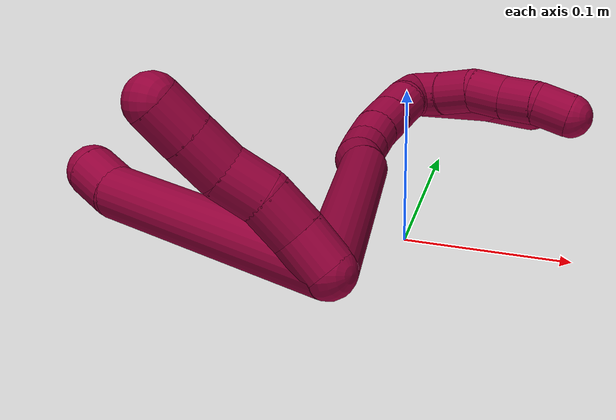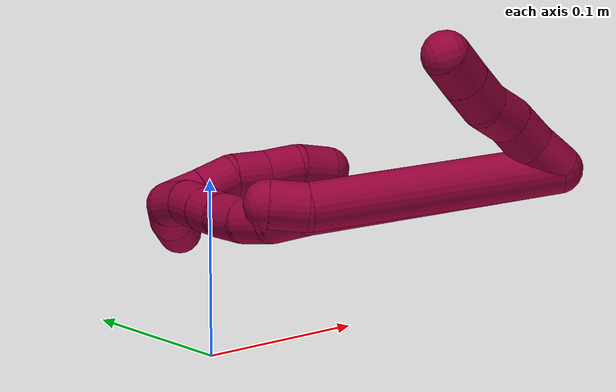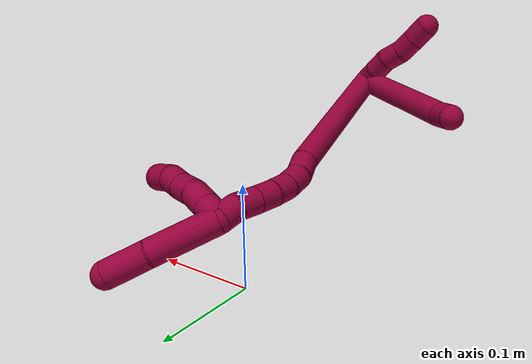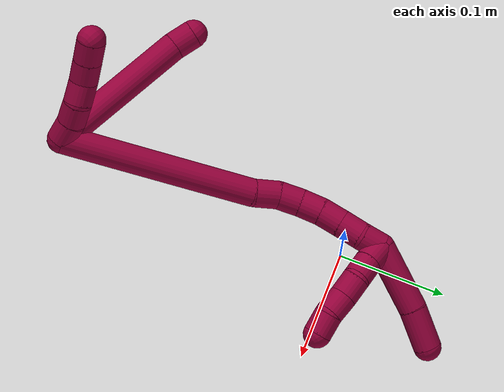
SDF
<sdf version="1.7">
 <world name="default">
  <model name="photoneo_s_sensor">
   <static>1</static>
   <pose>0 0 2 1.57079 1.57079 3.14159</pose>
   <link name="link">
    <inertial><mass>0.1</mass></inertial>
    <sensor name="sensor" type="depth">
     <update_rate>30</update_rate>
     <camera>
      <horizontal_fov>1.22</horizontal_fov>
      <image><width>1920</width><height>1200</height><format>B8G8R8</format></image>
      <clip><near>0.1</near><far>4</far></clip>
      <depth_camera><output>points</output></depth_camera>
     </camera>
     <plugin name="camera_plugin" filename="libgazebo_ros_depth_camera.so">
      <baseline>0.2</baseline>
      <alwaysOn>1</alwaysOn>
      <updateRate>0.0</updateRate>
      <cameraName>camera_ir</cameraName>
      <imageTopicName>/camera/color/image_raw</imageTopicName>
      <cameraInfoTopicName>/camera/color/camera_info</cameraInfoTopicName>
      <depthImageTopicName>/camera/depth/image_raw</depthImageTopicName>
      <depthImageCameraInfoTopicName>/camera/depth/camera_info</depthImageCameraInfoTopicName>
      <pointCloudTopicName>/camera/depth/points</pointCloudTopicName>
      <frameName>fr_optical</frameName>
      <pointCloudCutoff>0.1</pointCloudCutoff>
      <pointCloudCutoffMax>2.0</pointCloudCutoffMax>
      <distortionK1>0</distortionK1>
      <distortionK2>0</distortionK2>
      <distortionK3>0</distortionK3>
      <distortionT1>0</distortionT1>
      <distortionT2>0</distortionT2>
      <CxPrime>0</CxPrime>
      <Cx>0</Cx>
      <Cy>0</Cy>
      <focalLength>0</focalLength>
      <hackBaseline>0</hackBaseline>
     </plugin>
    </sensor>
   </link>
  </model>
  <model name="bin">
   <static>1</static>
   <link name="bottom">
    <collision name="collision-bottom">
     <pose>0 0 -0.01 0 -0 0</pose>
     <geometry><box><size>0.8 0.6 0.02</size></box></geometry>
     <surface>
      <friction><ode><mu>100</mu><mu2>100</mu2></ode></friction>
      <contact><collide_bitmask>65535</collide_bitmask></contact>
     </surface>
    </collision>
   </link>
   <link name="west_wall">
    <collision name="collision-west_wall">
     <pose>-0.41 0 0.1 0 -0 0</pose>
     <geometry><box><size>0.02 0.6 0.2</size></box></geometry>
     <surface>
      <friction><ode><mu>100</mu><mu2>100</mu2></ode></friction>
      <contact><collide_bitmask>65535</collide_bitmask></contact>
     </surface>
    </collision>
   </link>
   <link name="east_wall">
    <collision name="collision-east_wall">
     <pose>0.41 0 0.1 0 -0 0</pose>
     <geometry><box><size>0.02 0.6 0.2</size></box></geometry>
     <surface>
      <friction><ode><mu>100</mu><mu2>100</mu2></ode></friction>
      <contact><collide_bitmask>65535</collide_bitmask></contact>
     </surface>
    </collision>
   </link>
   <link name="south_wall">
    <collision name="collision-south_wall">
     <pose>0 -0.31 0.1 0 -0 0</pose>
     <geometry><box><size>0.8 0.02 0.2</size></box></geometry>
     <surface>
      <friction><ode><mu>100</mu><mu2>100</mu2></ode></friction>
      <contact><collide_bitmask>65535</collide_bitmask></contact>
     </surface>
    </collision>
   </link>
   <link name="north_wall">
    <collision name="collision-north_wall">
     <pose>0 0.31 0.1 0 -0 0</pose>
     <geometry><box><size>0.8 0.02 0.2</size></box></geometry>
     <surface>
      <friction><ode><mu>100</mu><mu2>100</mu2></ode></friction>
      <contact><collide_bitmask>65535</collide_bitmask></contact>
     </surface>
    </collision>
   </link>
  </model>
  <model name="8">
   <static>0</static>
   <link name="8">
    <collision name="collision-cylinder-e_1_2_8">
     <pose>-0.008957 -0.003268 -0.064124 3.09068 -0.138609 -2.43847</pose>
     <geometry><cylinder><radius>0.0125</radius><length>0.129657</length></cylinder></geometry>
     <surface>
      <friction><ode><mu>1.16</mu><mu2>1.16</mu2><slip1>0</slip1><slip2>0</slip2></ode></friction>
      <contact><ode><kp>1e+06</kp><kd>1</kd><max_vel>0</max_vel><min_depth>0.001</min_depth></ode></contact>
     </surface>
    </collision>
    <visual name="visual-cylinder-e_1_2_8">
     <pose>-0.008957 -0.003268 -0.064124 3.09068 -0.138609 -2.43847</pose>
     <geometry><cylinder><radius>0.0125</radius><length>0.129657</length></cylinder></geometry>
     <material><ambient>0.584314 0 0.227451 1</ambient></material>
    </visual>
    <collision name="collision-cylinder-e_2_8_6">
     <pose>-0.021904 -0.006807 -0.137599 3.11252 -0.403124 -2.99956</pose>
     <geometry><cylinder><radius>0.0125</radius><length>0.020343</length></cylinder></geometry>
     <surface>
      <friction><ode><mu>1.16</mu><mu2>1.16</mu2><slip1>0</slip1><slip2>0</slip2></ode></friction>
      <contact><ode><kp>1e+06</kp><kd>1</kd><max_vel>0</max_vel><min_depth>0.001</min_depth></ode></contact>
     </surface>
    </collision>
    <visual name="visual-cylinder-e_2_8_6">
     <pose>-0.021904 -0.006807 -0.137599 3.11252 -0.403124 -2.99956</pose>
     <geometry><cylinder><radius>0.0125</radius><length>0.020343</length></cylinder></geometry>
     <material><ambient>0.584314 0 0.227451 1</ambient></material>
    </visual>
    <collision name="collision-cylinder-e_1_2_9">
     <pose>-0.00592 -0.005723 -0.005675 2.352 -0.633553 -1.33321</pose>
     <geometry><cylinder><radius>0.0125</radius><length>0.02</length></cylinder></geometry>
     <surface>
      <friction><ode><mu>1.16</mu><mu2>1.16</mu2><slip1>0</slip1><slip2>0</slip2></ode></friction>
      <contact><ode><kp>1e+06</kp><kd>1</kd><max_vel>0</max_vel><min_depth>0.001</min_depth></ode></contact>
     </surface>
    </collision>
    <visual name="visual-cylinder-e_1_2_9">
     <pose>-0.00592 -0.005723 -0.005675 2.352 -0.633553 -1.33321</pose>
     <geometry><cylinder><radius>0.0125</radius><length>0.02</length></cylinder></geometry>
     <material><ambient>0.584314 0 0.227451 1</ambient></material>
    </visual>
    <collision name="collision-cylinder-e_2_9_10">
     <pose>-0.016985 -0.018524 -0.01619 2.17059 -0.540352 -0.966734</pose>
     <geometry><cylinder><radius>0.0125</radius><length>0.02</length></cylinder></geometry>
     <surface>
      <friction><ode><mu>1.16</mu><mu2>1.16</mu2><slip1>0</slip1><slip2>0</slip2></ode></friction>
      <contact><ode><kp>1e+06</kp><kd>1</kd><max_vel>0</max_vel><min_depth>0.001</min_depth></ode></contact>
     </surface>
    </collision>
    <visual name="visual-cylinder-e_2_9_10">
     <pose>-0.016985 -0.018524 -0.01619 2.17059 -0.540352 -0.966734</pose>
     <geometry><cylinder><radius>0.0125</radius><length>0.02</length></cylinder></geometry>
     <material><ambient>0.584314 0 0.227451 1</ambient></material>
    </visual>
    <collision name="collision-cylinder-e_3_10_11">
     <pose>-0.025063 -0.032797 -0.027326 2.28962 -0.297821 -0.638595</pose>
     <geometry><cylinder><radius>0.0125</radius><length>0.02</length></cylinder></geometry>
     <surface>
      <friction><ode><mu>1.16</mu><mu2>1.16</mu2><slip1>0</slip1><slip2>0</slip2></ode></friction>
      <contact><ode><kp>1e+06</kp><kd>1</kd><max_vel>0</max_vel><min_depth>0.001</min_depth></ode></contact>
     </surface>
    </collision>
    <visual name="visual-cylinder-e_3_10_11">
     <pose>-0.025063 -0.032797 -0.027326 2.28962 -0.297821 -0.638595</pose>
     <geometry><cylinder><radius>0.0125</radius><length>0.02</length></cylinder></geometry>
     <material><ambient>0.584314 0 0.227451 1</ambient></material>
    </visual>
    <collision name="collision-cylinder-e_4_11_12">
     <pose>-0.032468 -0.047771 -0.038037 2.08704 -0.463398 -0.769971</pose>
     <geometry><cylinder><radius>0.0125</radius><length>0.02</length></cylinder></geometry>
     <surface>
      <friction><ode><mu>1.16</mu><mu2>1.16</mu2><slip1>0</slip1><slip2>0</slip2></ode></friction>
      <contact><ode><kp>1e+06</kp><kd>1</kd><max_vel>0</max_vel><min_depth>0.001</min_depth></ode></contact>
     </surface>
    </collision>
    <visual name="visual-cylinder-e_4_11_12">
     <pose>-0.032468 -0.047771 -0.038037 2.08704 -0.463398 -0.769971</pose>
     <geometry><cylinder><radius>0.0125</radius><length>0.02</length></cylinder></geometry>
     <material><ambient>0.584314 0 0.227451 1</ambient></material>
    </visual>
    <collision name="collision-cylinder-e_5_12_5">
     <pose>-0.041534 -0.063363 -0.046675 2.06634 -0.477555 -0.775255</pose>
     <geometry><cylinder><radius>0.0125</radius><length>0.02</length></cylinder></geometry>
     <surface>
      <friction><ode><mu>1.16</mu><mu2>1.16</mu2><slip1>0</slip1><slip2>0</slip2></ode></friction>
      <contact><ode><kp>1e+06</kp><kd>1</kd><max_vel>0</max_vel><min_depth>0.001</min_depth></ode></contact>
     </surface>
    </collision>
    <visual name="visual-cylinder-e_5_12_5">
     <pose>-0.041534 -0.063363 -0.046675 2.06634 -0.477555 -0.775255</pose>
     <geometry><cylinder><radius>0.0125</radius><length>0.02</length></cylinder></geometry>
     <material><ambient>0.584314 0 0.227451 1</ambient></material>
    </visual>
    <collision name="collision-cylinder-e_1_2_13">
     <pose>-0.035171 0.063 -0.049357 -2.23536 -0.414058 0.814518</pose>
     <geometry><cylinder><radius>0.0125</radius><length>0.174837</length></cylinder></geometry>
     <surface>
      <friction><ode><mu>1.16</mu><mu2>1.16</mu2><slip1>0</slip1><slip2>0</slip2></ode></friction>
      <contact><ode><kp>1e+06</kp><kd>1</kd><max_vel>0</max_vel><min_depth>0.001</min_depth></ode></contact>
     </surface>
    </collision>
    <visual name="visual-cylinder-e_1_2_13">
     <pose>-0.035171 0.063 -0.049357 -2.23536 -0.414058 0.814518</pose>
     <geometry><cylinder><radius>0.0125</radius><length>0.174837</length></cylinder></geometry>
     <material><ambient>0.584314 0 0.227451 1</ambient></material>
    </visual>
    <collision name="collision-cylinder-e_2_13_14">
     <pose>-0.074071 0.133106 -0.106936 -2.42889 -0.330493 0.842386</pose>
     <geometry><cylinder><radius>0.0125</radius><length>0.02298</length></cylinder></geometry>
     <surface>
      <friction><ode><mu>1.16</mu><mu2>1.16</mu2><slip1>0</slip1><slip2>0</slip2></ode></friction>
      <contact><ode><kp>1e+06</kp><kd>1</kd><max_vel>0</max_vel><min_depth>0.001</min_depth></ode></contact>
     </surface>
    </collision>
    <visual name="visual-cylinder-e_2_13_14">
     <pose>-0.074071 0.133106 -0.106936 -2.42889 -0.330493 0.842386</pose>
     <geometry><cylinder><radius>0.0125</radius><length>0.02298</length></cylinder></geometry>
     <material><ambient>0.584314 0 0.227451 1</ambient></material>
    </visual>
    <collision name="collision-cylinder-e_3_14_15">
     <pose>-0.083162 0.14767 -0.120174 -2.16274 -0.538017 0.955226</pose>
     <geometry><cylinder><radius>0.0125</radius><length>0.020932</length></cylinder></geometry>
     <surface>
      <friction><ode><mu>1.16</mu><mu2>1.16</mu2><slip1>0</slip1><slip2>0</slip2></ode></friction>
      <contact><ode><kp>1e+06</kp><kd>1</kd><max_vel>0</max_vel><min_depth>0.001</min_depth></ode></contact>
     </surface>
    </collision>
    <visual name="visual-cylinder-e_3_14_15">
     <pose>-0.083162 0.14767 -0.120174 -2.16274 -0.538017 0.955226</pose>
     <geometry><cylinder><radius>0.0125</radius><length>0.020932</length></cylinder></geometry>
     <material><ambient>0.584314 0 0.227451 1</ambient></material>
    </visual>
    <collision name="collision-cylinder-e_4_15_16">
     <pose>-0.094935 0.162058 -0.128769 -2.04769 -0.687857 1.06339</pose>
     <geometry><cylinder><radius>0.0125</radius><length>0.020191</length></cylinder></geometry>
     <surface>
      <friction><ode><mu>1.16</mu><mu2>1.16</mu2><slip1>0</slip1><slip2>0</slip2></ode></friction>
      <contact><ode><kp>1e+06</kp><kd>1</kd><max_vel>0</max_vel><min_depth>0.001</min_depth></ode></contact>
     </surface>
    </collision>
    <visual name="visual-cylinder-e_4_15_16">
     <pose>-0.094935 0.162058 -0.128769 -2.04769 -0.687857 1.06339</pose>
     <geometry><cylinder><radius>0.0125</radius><length>0.020191</length></cylinder></geometry>
     <material><ambient>0.584314 0 0.227451 1</ambient></material>
    </visual>
    <collision name="collision-cylinder-e_5_16_17">
     <pose>-0.107737 0.176395 -0.134691 -1.87696 -0.688562 0.910248</pose>
     <geometry><cylinder><radius>0.0125</radius><length>0.020121</length></cylinder></geometry>
     <surface>
      <friction><ode><mu>1.16</mu><mu2>1.16</mu2><slip1>0</slip1><slip2>0</slip2></ode></friction>
      <contact><ode><kp>1e+06</kp><kd>1</kd><max_vel>0</max_vel><min_depth>0.001</min_depth></ode></contact>
     </surface>
    </collision>
    <visual name="visual-cylinder-e_5_16_17">
     <pose>-0.107737 0.176395 -0.134691 -1.87696 -0.688562 0.910248</pose>
     <geometry><cylinder><radius>0.0125</radius><length>0.020121</length></cylinder></geometry>
     <material><ambient>0.584314 0 0.227451 1</ambient></material>
    </visual>
    <collision name="collision-cylinder-e_6_17_18">
     <pose>-0.12089 0.191392 -0.13916 -1.84416 -0.708929 0.908224</pose>
     <geometry><cylinder><radius>0.0125</radius><length>0.02077</length></cylinder></geometry>
     <surface>
      <friction><ode><mu>1.16</mu><mu2>1.16</mu2><slip1>0</slip1><slip2>0</slip2></ode></friction>
      <contact><ode><kp>1e+06</kp><kd>1</kd><max_vel>0</max_vel><min_depth>0.001</min_depth></ode></contact>
     </surface>
    </collision>
    <visual name="visual-cylinder-e_6_17_18">
     <pose>-0.12089 0.191392 -0.13916 -1.84416 -0.708929 0.908224</pose>
     <geometry><cylinder><radius>0.0125</radius><length>0.02077</length></cylinder></geometry>
     <material><ambient>0.584314 0 0.227451 1</ambient></material>
    </visual>
    <collision name="collision-cylinder-e_7_18_1">
     <pose>-0.132283 0.207283 -0.144657 -1.95633 -0.477164 0.69321</pose>
     <geometry><cylinder><radius>0.0125</radius><length>0.020169</length></cylinder></geometry>
     <surface>
      <friction><ode><mu>1.16</mu><mu2>1.16</mu2><slip1>0</slip1><slip2>0</slip2></ode></friction>
      <contact><ode><kp>1e+06</kp><kd>1</kd><max_vel>0</max_vel><min_depth>0.001</min_depth></ode></contact>
     </surface>
    </collision>
    <visual name="visual-cylinder-e_7_18_1">
     <pose>-0.132283 0.207283 -0.144657 -1.95633 -0.477164 0.69321</pose>
     <geometry><cylinder><radius>0.0125</radius><length>0.020169</length></cylinder></geometry>
     <material><ambient>0.584314 0 0.227451 1</ambient></material>
    </visual>
    <collision name="collision-cylinder-e_1_1_19">
     <pose>-0.138063 0.215878 -0.138096 -0.029674 -0.115122 0.00171</pose>
     <geometry><cylinder><radius>0.0125</radius><length>0.02</length></cylinder></geometry>
     <surface>
      <friction><ode><mu>1.16</mu><mu2>1.16</mu2><slip1>0</slip1><slip2>0</slip2></ode></friction>
      <contact><ode><kp>1e+06</kp><kd>1</kd><max_vel>0</max_vel><min_depth>0.001</min_depth></ode></contact>
     </surface>
    </collision>
    <visual name="visual-cylinder-e_1_1_19">
     <pose>-0.138063 0.215878 -0.138096 -0.029674 -0.115122 0.00171</pose>
     <geometry><cylinder><radius>0.0125</radius><length>0.02</length></cylinder></geometry>
     <material><ambient>0.584314 0 0.227451 1</ambient></material>
    </visual>
    <collision name="collision-cylinder-e_2_19_20">
     <pose>-0.140996 0.216916 -0.118355 -0.07564 -0.179454 0.006808</pose>
     <geometry><cylinder><radius>0.0125</radius><length>0.02</length></cylinder></geometry>
     <surface>
      <friction><ode><mu>1.16</mu><mu2>1.16</mu2><slip1>0</slip1><slip2>0</slip2></ode></friction>
      <contact><ode><kp>1e+06</kp><kd>1</kd><max_vel>0</max_vel><min_depth>0.001</min_depth></ode></contact>
     </surface>
    </collision>
    <visual name="visual-cylinder-e_2_19_20">
     <pose>-0.140996 0.216916 -0.118355 -0.07564 -0.179454 0.006808</pose>
     <geometry><cylinder><radius>0.0125</radius><length>0.02</length></cylinder></geometry>
     <material><ambient>0.584314 0 0.227451 1</ambient></material>
    </visual>
    <collision name="collision-cylinder-e_3_20_21">
     <pose>-0.141988 0.220239 -0.098915 -0.261735 0.079391 -0.010455</pose>
     <geometry><cylinder><radius>0.0125</radius><length>0.02</length></cylinder></geometry>
     <surface>
      <friction><ode><mu>1.16</mu><mu2>1.16</mu2><slip1>0</slip1><slip2>0</slip2></ode></friction>
      <contact><ode><kp>1e+06</kp><kd>1</kd><max_vel>0</max_vel><min_depth>0.001</min_depth></ode></contact>
     </surface>
    </collision>
    <visual name="visual-cylinder-e_3_20_21">
     <pose>-0.141988 0.220239 -0.098915 -0.261735 0.079391 -0.010455</pose>
     <geometry><cylinder><radius>0.0125</radius><length>0.02</length></cylinder></geometry>
     <material><ambient>0.584314 0 0.227451 1</ambient></material>
    </visual>
    <collision name="collision-cylinder-e_4_21_22">
     <pose>-0.140794 0.224387 -0.079418 -0.157618 0.04016 -0.003172</pose>
     <geometry><cylinder><radius>0.0125</radius><length>0.02</length></cylinder></geometry>
     <surface>
      <friction><ode><mu>1.16</mu><mu2>1.16</mu2><slip1>0</slip1><slip2>0</slip2></ode></friction>
      <contact><ode><kp>1e+06</kp><kd>1</kd><max_vel>0</max_vel><min_depth>0.001</min_depth></ode></contact>
     </surface>
    </collision>
    <visual name="visual-cylinder-e_4_21_22">
     <pose>-0.140794 0.224387 -0.079418 -0.157618 0.04016 -0.003172</pose>
     <geometry><cylinder><radius>0.0125</radius><length>0.02</length></cylinder></geometry>
     <material><ambient>0.584314 0 0.227451 1</ambient></material>
    </visual>
    <collision name="collision-cylinder-e_5_22_4">
     <pose>-0.138722 0.23038 -0.060739 -0.465395 0.167841 -0.039865</pose>
     <geometry><cylinder><radius>0.0125</radius><length>0.02</length></cylinder></geometry>
     <surface>
      <friction><ode><mu>1.16</mu><mu2>1.16</mu2><slip1>0</slip1><slip2>0</slip2></ode></friction>
      <contact><ode><kp>1e+06</kp><kd>1</kd><max_vel>0</max_vel><min_depth>0.001</min_depth></ode></contact>
     </surface>
    </collision>
    <visual name="visual-cylinder-e_5_22_4">
     <pose>-0.138722 0.23038 -0.060739 -0.465395 0.167841 -0.039865</pose>
     <geometry><cylinder><radius>0.0125</radius><length>0.02</length></cylinder></geometry>
     <material><ambient>0.584314 0 0.227451 1</ambient></material>
    </visual>
    <collision name="collision-cylinder-e_1_1_23">
     <pose>-0.14487 0.245098 -0.142925 -1.39969 -0.259628 0.218969</pose>
     <geometry><cylinder><radius>0.0125</radius><length>0.061982</length></cylinder></geometry>
     <surface>
      <friction><ode><mu>1.16</mu><mu2>1.16</mu2><slip1>0</slip1><slip2>0</slip2></ode></friction>
      <contact><ode><kp>1e+06</kp><kd>1</kd><max_vel>0</max_vel><min_depth>0.001</min_depth></ode></contact>
     </surface>
    </collision>
    <visual name="visual-cylinder-e_1_1_23">
     <pose>-0.14487 0.245098 -0.142925 -1.39969 -0.259628 0.218969</pose>
     <geometry><cylinder><radius>0.0125</radius><length>0.061982</length></cylinder></geometry>
     <material><ambient>0.584314 0 0.227451 1</ambient></material>
    </visual>
    <collision name="collision-cylinder-e_2_23_3">
     <pose>-0.156 0.292787 -0.133244 -1.32386 -0.167728 0.130815</pose>
     <geometry><cylinder><radius>0.0125</radius><length>0.038018</length></cylinder></geometry>
     <surface>
      <friction><ode><mu>1.16</mu><mu2>1.16</mu2><slip1>0</slip1><slip2>0</slip2></ode></friction>
      <contact><ode><kp>1e+06</kp><kd>1</kd><max_vel>0</max_vel><min_depth>0.001</min_depth></ode></contact>
     </surface>
    </collision>
    <visual name="visual-cylinder-e_2_23_3">
     <pose>-0.156 0.292787 -0.133244 -1.32386 -0.167728 0.130815</pose>
     <geometry><cylinder><radius>0.0125</radius><length>0.038018</length></cylinder></geometry>
     <material><ambient>0.584314 0 0.227451 1</ambient></material>
    </visual>
    <collision name="collision-sphere-3">
     <pose>-0.159173 0.310961 -0.128663 0 -0 0</pose>
     <geometry><sphere><radius>0.0125</radius></sphere></geometry>
     <surface>
      <friction><ode><mu>1.16</mu><mu2>1.16</mu2><slip1>0</slip1><slip2>0</slip2></ode></friction>
      <contact><ode><kp>1e+06</kp><kd>1</kd><max_vel>0</max_vel><min_depth>0.001</min_depth></ode></contact>
     </surface>
    </collision>
    <visual name="visual-sphere-3">
     <pose>-0.159173 0.310961 -0.128663 0 -0 0</pose>
     <geometry><sphere><radius>0.0125</radius></sphere></geometry>
     <material><ambient>0.584314 0 0.227451 1</ambient></material>
    </visual>
    <collision name="collision-sphere-23">
     <pose>-0.152826 0.274613 -0.137825 0 -0 0</pose>
     <geometry><sphere><radius>0.0125</radius></sphere></geometry>
     <surface>
      <friction><ode><mu>1.16</mu><mu2>1.16</mu2><slip1>0</slip1><slip2>0</slip2></ode></friction>
      <contact><ode><kp>1e+06</kp><kd>1</kd><max_vel>0</max_vel><min_depth>0.001</min_depth></ode></contact>
     </surface>
    </collision>
    <visual name="visual-sphere-23">
     <pose>-0.152826 0.274613 -0.137825 0 -0 0</pose>
     <geometry><sphere><radius>0.0125</radius></sphere></geometry>
     <material><ambient>0.584314 0 0.227451 1</ambient></material>
    </visual>
    <collision name="collision-sphere-4">
     <pose>-0.137051 0.234805 -0.051928 0 -0 0</pose>
     <geometry><sphere><radius>0.0125</radius></sphere></geometry>
     <surface>
      <friction><ode><mu>1.16</mu><mu2>1.16</mu2><slip1>0</slip1><slip2>0</slip2></ode></friction>
      <contact><ode><kp>1e+06</kp><kd>1</kd><max_vel>0</max_vel><min_depth>0.001</min_depth></ode></contact>
     </surface>
    </collision>
    <visual name="visual-sphere-4">
     <pose>-0.137051 0.234805 -0.051928 0 -0 0</pose>
     <geometry><sphere><radius>0.0125</radius></sphere></geometry>
     <material><ambient>0.584314 0 0.227451 1</ambient></material>
    </visual>
    <collision name="collision-sphere-22">
     <pose>-0.140392 0.225955 -0.06955 0 -0 0</pose>
     <geometry><sphere><radius>0.0125</radius></sphere></geometry>
     <surface>
      <friction><ode><mu>1.16</mu><mu2>1.16</mu2><slip1>0</slip1><slip2>0</slip2></ode></friction>
      <contact><ode><kp>1e+06</kp><kd>1</kd><max_vel>0</max_vel><min_depth>0.001</min_depth></ode></contact>
     </surface>
    </collision>
    <visual name="visual-sphere-22">
     <pose>-0.140392 0.225955 -0.06955 0 -0 0</pose>
     <geometry><sphere><radius>0.0125</radius></sphere></geometry>
     <material><ambient>0.584314 0 0.227451 1</ambient></material>
    </visual>
    <collision name="collision-sphere-21">
     <pose>-0.141195 0.222819 -0.089286 0 -0 0</pose>
     <geometry><sphere><radius>0.0125</radius></sphere></geometry>
     <surface>
      <friction><ode><mu>1.16</mu><mu2>1.16</mu2><slip1>0</slip1><slip2>0</slip2></ode></friction>
      <contact><ode><kp>1e+06</kp><kd>1</kd><max_vel>0</max_vel><min_depth>0.001</min_depth></ode></contact>
     </surface>
    </collision>
    <visual name="visual-sphere-21">
     <pose>-0.141195 0.222819 -0.089286 0 -0 0</pose>
     <geometry><sphere><radius>0.0125</radius></sphere></geometry>
     <material><ambient>0.584314 0 0.227451 1</ambient></material>
    </visual>
    <collision name="collision-sphere-20">
     <pose>-0.142781 0.21766 -0.108544 0 -0 0</pose>
     <geometry><sphere><radius>0.0125</radius></sphere></geometry>
     <surface>
      <friction><ode><mu>1.16</mu><mu2>1.16</mu2><slip1>0</slip1><slip2>0</slip2></ode></friction>
      <contact><ode><kp>1e+06</kp><kd>1</kd><max_vel>0</max_vel><min_depth>0.001</min_depth></ode></contact>
     </surface>
    </collision>
    <visual name="visual-sphere-20">
     <pose>-0.142781 0.21766 -0.108544 0 -0 0</pose>
     <geometry><sphere><radius>0.0125</radius></sphere></geometry>
     <material><ambient>0.584314 0 0.227451 1</ambient></material>
    </visual>
    <collision name="collision-sphere-11">
     <pose>-0.027998 -0.039991 -0.033621 0 -0 0</pose>
     <geometry><sphere><radius>0.0125</radius></sphere></geometry>
     <surface>
      <friction><ode><mu>1.16</mu><mu2>1.16</mu2><slip1>0</slip1><slip2>0</slip2></ode></friction>
      <contact><ode><kp>1e+06</kp><kd>1</kd><max_vel>0</max_vel><min_depth>0.001</min_depth></ode></contact>
     </surface>
    </collision>
    <visual name="visual-sphere-11">
     <pose>-0.027998 -0.039991 -0.033621 0 -0 0</pose>
     <geometry><sphere><radius>0.0125</radius></sphere></geometry>
     <material><ambient>0.584314 0 0.227451 1</ambient></material>
    </visual>
    <collision name="collision-sphere-10">
     <pose>-0.022129 -0.025602 -0.021031 0 -0 0</pose>
     <geometry><sphere><radius>0.0125</radius></sphere></geometry>
     <surface>
      <friction><ode><mu>1.16</mu><mu2>1.16</mu2><slip1>0</slip1><slip2>0</slip2></ode></friction>
      <contact><ode><kp>1e+06</kp><kd>1</kd><max_vel>0</max_vel><min_depth>0.001</min_depth></ode></contact>
     </surface>
    </collision>
    <visual name="visual-sphere-10">
     <pose>-0.022129 -0.025602 -0.021031 0 -0 0</pose>
     <geometry><sphere><radius>0.0125</radius></sphere></geometry>
     <material><ambient>0.584314 0 0.227451 1</ambient></material>
    </visual>
    <collision name="collision-sphere-6">
     <pose>-0.025894 -0.007079 -0.146952 0 -0 0</pose>
     <geometry><sphere><radius>0.0125</radius></sphere></geometry>
     <surface>
      <friction><ode><mu>1.16</mu><mu2>1.16</mu2><slip1>0</slip1><slip2>0</slip2></ode></friction>
      <contact><ode><kp>1e+06</kp><kd>1</kd><max_vel>0</max_vel><min_depth>0.001</min_depth></ode></contact>
     </surface>
    </collision>
    <visual name="visual-sphere-6">
     <pose>-0.025894 -0.007079 -0.146952 0 -0 0</pose>
     <geometry><sphere><radius>0.0125</radius></sphere></geometry>
     <material><ambient>0.584314 0 0.227451 1</ambient></material>
    </visual>
    <collision name="collision-sphere-9">
     <pose>-0.01184 -0.011445 -0.01135 0 -0 0</pose>
     <geometry><sphere><radius>0.0125</radius></sphere></geometry>
     <surface>
      <friction><ode><mu>1.16</mu><mu2>1.16</mu2><slip1>0</slip1><slip2>0</slip2></ode></friction>
      <contact><ode><kp>1e+06</kp><kd>1</kd><max_vel>0</max_vel><min_depth>0.001</min_depth></ode></contact>
     </surface>
    </collision>
    <visual name="visual-sphere-9">
     <pose>-0.01184 -0.011445 -0.01135 0 -0 0</pose>
     <geometry><sphere><radius>0.0125</radius></sphere></geometry>
     <material><ambient>0.584314 0 0.227451 1</ambient></material>
    </visual>
    <collision name="collision-sphere-2">
     <geometry><sphere><radius>0.0125</radius></sphere></geometry>
     <surface>
      <friction><ode><mu>1.16</mu><mu2>1.16</mu2><slip1>0</slip1><slip2>0</slip2></ode></friction>
      <contact><ode><kp>1e+06</kp><kd>1</kd><max_vel>0</max_vel><min_depth>0.001</min_depth></ode></contact>
     </surface>
    </collision>
    <visual name="visual-sphere-2">
     <geometry><sphere><radius>0.0125</radius></sphere></geometry>
     <material><ambient>0.584314 0 0.227451 1</ambient></material>
    </visual>
    <collision name="collision-sphere-19">
     <pose>-0.139211 0.216173 -0.128167 0 -0 0</pose>
     <geometry><sphere><radius>0.0125</radius></sphere></geometry>
     <surface>
      <friction><ode><mu>1.16</mu><mu2>1.16</mu2><slip1>0</slip1><slip2>0</slip2></ode></friction>
      <contact><ode><kp>1e+06</kp><kd>1</kd><max_vel>0</max_vel><min_depth>0.001</min_depth></ode></contact>
     </surface>
    </collision>
    <visual name="visual-sphere-19">
     <pose>-0.139211 0.216173 -0.128167 0 -0 0</pose>
     <geometry><sphere><radius>0.0125</radius></sphere></geometry>
     <material><ambient>0.584314 0 0.227451 1</ambient></material>
    </visual>
    <collision name="collision-sphere-8">
     <pose>-0.017914 -0.006535 -0.128247 0 -0 0</pose>
     <geometry><sphere><radius>0.0125</radius></sphere></geometry>
     <surface>
      <friction><ode><mu>1.16</mu><mu2>1.16</mu2><slip1>0</slip1><slip2>0</slip2></ode></friction>
      <contact><ode><kp>1e+06</kp><kd>1</kd><max_vel>0</max_vel><min_depth>0.001</min_depth></ode></contact>
     </surface>
    </collision>
    <visual name="visual-sphere-8">
     <pose>-0.017914 -0.006535 -0.128247 0 -0 0</pose>
     <geometry><sphere><radius>0.0125</radius></sphere></geometry>
     <material><ambient>0.584314 0 0.227451 1</ambient></material>
    </visual>
    <collision name="collision-sphere-12">
     <pose>-0.036938 -0.05555 -0.042452 0 -0 0</pose>
     <geometry><sphere><radius>0.0125</radius></sphere></geometry>
     <surface>
      <friction><ode><mu>1.16</mu><mu2>1.16</mu2><slip1>0</slip1><slip2>0</slip2></ode></friction>
      <contact><ode><kp>1e+06</kp><kd>1</kd><max_vel>0</max_vel><min_depth>0.001</min_depth></ode></contact>
     </surface>
    </collision>
    <visual name="visual-sphere-12">
     <pose>-0.036938 -0.05555 -0.042452 0 -0 0</pose>
     <geometry><sphere><radius>0.0125</radius></sphere></geometry>
     <material><ambient>0.584314 0 0.227451 1</ambient></material>
    </visual>
    <collision name="collision-sphere-5">
     <pose>-0.04613 -0.071176 -0.050898 0 -0 0</pose>
     <geometry><sphere><radius>0.0125</radius></sphere></geometry>
     <surface>
      <friction><ode><mu>1.16</mu><mu2>1.16</mu2><slip1>0</slip1><slip2>0</slip2></ode></friction>
      <contact><ode><kp>1e+06</kp><kd>1</kd><max_vel>0</max_vel><min_depth>0.001</min_depth></ode></contact>
     </surface>
    </collision>
    <visual name="visual-sphere-5">
     <pose>-0.04613 -0.071176 -0.050898 0 -0 0</pose>
     <geometry><sphere><radius>0.0125</radius></sphere></geometry>
     <material><ambient>0.584314 0 0.227451 1</ambient></material>
    </visual>
    <collision name="collision-sphere-13">
     <pose>-0.070342 0.125999 -0.098714 0 -0 0</pose>
     <geometry><sphere><radius>0.0125</radius></sphere></geometry>
     <surface>
      <friction><ode><mu>1.16</mu><mu2>1.16</mu2><slip1>0</slip1><slip2>0</slip2></ode></friction>
      <contact><ode><kp>1e+06</kp><kd>1</kd><max_vel>0</max_vel><min_depth>0.001</min_depth></ode></contact>
     </surface>
    </collision>
    <visual name="visual-sphere-13">
     <pose>-0.070342 0.125999 -0.098714 0 -0 0</pose>
     <geometry><sphere><radius>0.0125</radius></sphere></geometry>
     <material><ambient>0.584314 0 0.227451 1</ambient></material>
    </visual>
    <collision name="collision-sphere-14">
     <pose>-0.077799 0.140212 -0.115159 0 -0 0</pose>
     <geometry><sphere><radius>0.0125</radius></sphere></geometry>
     <surface>
      <friction><ode><mu>1.16</mu><mu2>1.16</mu2><slip1>0</slip1><slip2>0</slip2></ode></friction>
      <contact><ode><kp>1e+06</kp><kd>1</kd><max_vel>0</max_vel><min_depth>0.001</min_depth></ode></contact>
     </surface>
    </collision>
    <visual name="visual-sphere-14">
     <pose>-0.077799 0.140212 -0.115159 0 -0 0</pose>
     <geometry><sphere><radius>0.0125</radius></sphere></geometry>
     <material><ambient>0.584314 0 0.227451 1</ambient></material>
    </visual>
    <collision name="collision-sphere-15">
     <pose>-0.088525 0.155129 -0.125189 0 -0 0</pose>
     <geometry><sphere><radius>0.0125</radius></sphere></geometry>
     <surface>
      <friction><ode><mu>1.16</mu><mu2>1.16</mu2><slip1>0</slip1><slip2>0</slip2></ode></friction>
      <contact><ode><kp>1e+06</kp><kd>1</kd><max_vel>0</max_vel><min_depth>0.001</min_depth></ode></contact>
     </surface>
    </collision>
    <visual name="visual-sphere-15">
     <pose>-0.088525 0.155129 -0.125189 0 -0 0</pose>
     <geometry><sphere><radius>0.0125</radius></sphere></geometry>
     <material><ambient>0.584314 0 0.227451 1</ambient></material>
    </visual>
    <collision name="collision-sphere-16">
     <pose>-0.101344 0.168988 -0.132349 0 -0 0</pose>
     <geometry><sphere><radius>0.0125</radius></sphere></geometry>
     <surface>
      <friction><ode><mu>1.16</mu><mu2>1.16</mu2><slip1>0</slip1><slip2>0</slip2></ode></friction>
      <contact><ode><kp>1e+06</kp><kd>1</kd><max_vel>0</max_vel><min_depth>0.001</min_depth></ode></contact>
     </surface>
    </collision>
    <visual name="visual-sphere-16">
     <pose>-0.101344 0.168988 -0.132349 0 -0 0</pose>
     <geometry><sphere><radius>0.0125</radius></sphere></geometry>
     <material><ambient>0.584314 0 0.227451 1</ambient></material>
    </visual>
    <collision name="collision-sphere-17">
     <pose>-0.11413 0.183802 -0.137032 0 -0 0</pose>
     <geometry><sphere><radius>0.0125</radius></sphere></geometry>
     <surface>
      <friction><ode><mu>1.16</mu><mu2>1.16</mu2><slip1>0</slip1><slip2>0</slip2></ode></friction>
      <contact><ode><kp>1e+06</kp><kd>1</kd><max_vel>0</max_vel><min_depth>0.001</min_depth></ode></contact>
     </surface>
    </collision>
    <visual name="visual-sphere-17">
     <pose>-0.11413 0.183802 -0.137032 0 -0 0</pose>
     <geometry><sphere><radius>0.0125</radius></sphere></geometry>
     <material><ambient>0.584314 0 0.227451 1</ambient></material>
    </visual>
    <collision name="collision-sphere-18">
     <pose>-0.127651 0.198982 -0.141288 0 -0 0</pose>
     <geometry><sphere><radius>0.0125</radius></sphere></geometry>
     <surface>
      <friction><ode><mu>1.16</mu><mu2>1.16</mu2><slip1>0</slip1><slip2>0</slip2></ode></friction>
      <contact><ode><kp>1e+06</kp><kd>1</kd><max_vel>0</max_vel><min_depth>0.001</min_depth></ode></contact>
     </surface>
    </collision>
    <visual name="visual-sphere-18">
     <pose>-0.127651 0.198982 -0.141288 0 -0 0</pose>
     <geometry><sphere><radius>0.0125</radius></sphere></geometry>
     <material><ambient>0.584314 0 0.227451 1</ambient></material>
    </visual>
    <collision name="collision-sphere-1">
     <pose>-0.136914 0.215583 -0.148026 0 -0 0</pose>
     <geometry><sphere><radius>0.0125</radius></sphere></geometry>
     <surface>
      <friction><ode><mu>1.16</mu><mu2>1.16</mu2><slip1>0</slip1><slip2>0</slip2></ode></friction>
      <contact><ode><kp>1e+06</kp><kd>1</kd><max_vel>0</max_vel><min_depth>0.001</min_depth></ode></contact>
     </surface>
    </collision>
    <visual name="visual-sphere-1">
     <pose>-0.136914 0.215583 -0.148026 0 -0 0</pose>
     <geometry><sphere><radius>0.0125</radius></sphere></geometry>
     <material><ambient>0.584314 0 0.227451 1</ambient></material>
    </visual>
    <inertial>
     <pose>-0.069098 0.10226 -0.083129 0 -0 0</pose>
     <mass>0.75</mass>
     <inertia>
      <ixx>0.000355</ixx>
      <ixy>0</ixy>
      <ixz>0</ixz>
      <iyy>0.000279</iyy>
      <iyz>0</iyz>
      <izz>-0.000141</izz>
     </inertia>
    </inertial>
   </link>
   <pose>0.023861 -0.252583 0.146824 -1.21224 0.843741 -1.69952</pose>
  </model>
 </world>
</sdf>
